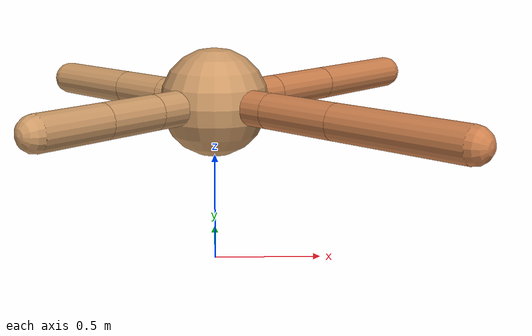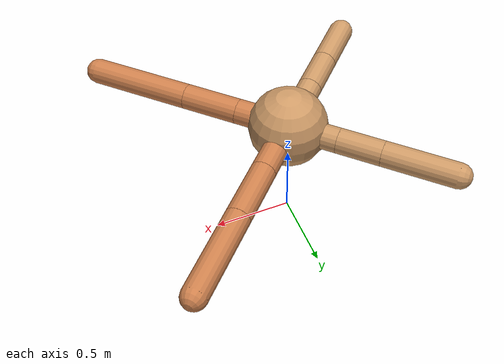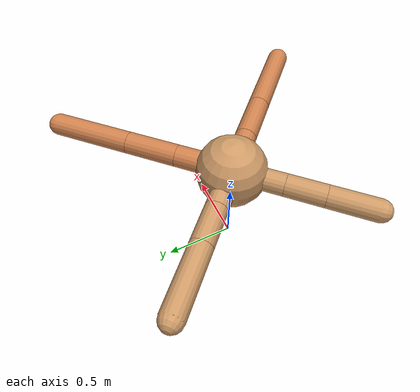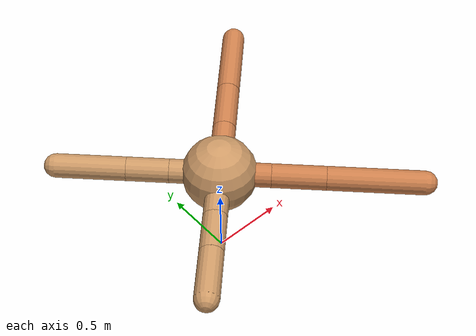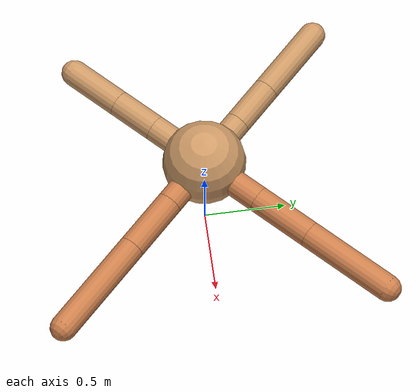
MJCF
<mujoco model="ant">
  <compiler angle="degree" coordinate="local" inertiafromgeom="true" />
  <option integrator="RK4" timestep="0.01" />
  <custom>
    <numeric data="0.0 0.0 0.55 1.0 0.0 0.0 0.0 0.0 1.0 0.0 -1.0 0.0 -1.0 0.0 1.0" name="init_qpos" />
  </custom>
  <default>
    <joint armature="1" damping="1" limited="true" />
    <geom conaffinity="0" condim="3" density="5.0" friction="1.5 0.1 0.1" margin="0.01" rgba="0.8 0.6 0.4 1" />
  </default>
  <worldbody>
    <body name="torso" pos="0 0 0.75">
      <geom name="torso_geom" pos="0 0 0" size="0.25" type="sphere" />

      <body name="front_left_leg" pos="0 0 0">
        <geom fromto="0.0 0.0 0.0 0.2846480738432832 0.2846480738432832 0.0" name="aux_1_geom" size="0.08" type="capsule" rgba=".8 .5 .3 1" />
        <body name="aux_1" pos="0.2846480738432832 0.2846480738432832 0.0">
          <joint axis="0 0 1" name="hip_1" pos="0.0 0.0 0.0" range="-40 40" type="hinge" />
          <geom fromto="0.0 0.0 0.0 0.2642315134475141 0.2642315134475141 0.0" name="left_leg_geom" size="0.08" type="capsule" rgba=".8 .5 .3 1" />
          <body pos="0.2642315134475141 0.2642315134475141 0.0" name="front_left_foot">
            <joint axis="-1 1 0" name="ankle_1" pos="0.0 0.0 0.0" range="30 100" type="hinge" />
            <geom fromto="0.0 0.0 0.0 0.4007781758064171 0.4007781758064171 0.0" name="left_ankle_geom" size="0.08" type="capsule" rgba=".8 .5 .3 1" />
          </body>
        </body>
      </body>
      <body name="front_right_leg" pos="0 0 0">
        <geom fromto="0.0 0.0 0.0 -0.231689181219001 0.231689181219001 0.0" name="aux_2_geom" size="0.08" type="capsule" />
        <body name="aux_2" pos="-0.231689181219001 0.231689181219001 0.0">
          <joint axis="0 0 1" name="hip_2" pos="0.0 0.0 0.0" range="-40 40" type="hinge" />
          <geom fromto="0.0 0.0 0.0 -0.19949633041703332 0.19949633041703332 0.0" name="right_leg_geom" size="0.08" type="capsule" />
          <body pos="-0.19949633041703332 0.19949633041703332 0.0" name="front_right_foot">
            <joint axis="1 1 0" name="ankle_2" pos="0.0 0.0 0.0" range="-100 -30" type="hinge" />
            <geom fromto="0.0 0.0 0.0 -0.330723218222318 0.330723218222318 0.0" name="right_ankle_geom" size="0.08" type="capsule" />
          </body>
        </body>
      </body>
      <body name="left_back_leg" pos="0 0 0">
        <geom fromto="0.0 0.0 0.0 -0.2620733787118219 -0.2620733787118219 0.0" name="aux_3_geom" size="0.08" type="capsule" />
        <body name="aux_3" pos="-0.2620733787118219 -0.2620733787118219 0.0">
          <joint axis="0 0 1" name="hip_3" pos="0.0 0.0 0.0" range="-40 40" type="hinge" />
          <geom fromto="0.0 0.0 0.0 -0.1948211546175395 -0.1948211546175395 0.0" name="back_leg_geom" size="0.08" type="capsule" />
          <body pos="-0.1948211546175395 -0.1948211546175395 0.0" name="left_back_foot">
            <joint axis="-1 1 0" name="ankle_3" pos="0.0 0.0 0.0" range="-100 -30" type="hinge" />
            <geom fromto="0.0 0.0 0.0 -0.24031440920496597 -0.24031440920496597 0.0" name="third_ankle_geom" size="0.08" type="capsule" />
          </body>
        </body>
      </body>
      <body name="right_back_leg" pos="0 0 0">
        <geom fromto="0.0 0.0 0.0 0.2388923390842512 -0.2388923390842512 0.0" name="aux_4_geom" size="0.08" type="capsule" rgba=".8 .5 .3 1" />
        <body name="aux_4" pos="0.2388923390842512 -0.2388923390842512 0.0">
          <joint axis="0 0 1" name="hip_4" pos="0.0 0.0 0.0" range="-40 40" type="hinge" />
          <geom fromto="0.0 0.0 0.0 0.25278358461535805 -0.25278358461535805 0.0" name="rightback_leg_geom" size="0.08" type="capsule" rgba=".8 .5 .3 1" />
          <body pos="0.25278358461535805 -0.25278358461535805 0.0" name="right_back_foot">
            <joint axis="1 1 0" name="ankle_4" pos="0.0 0.0 0.0" range="30 100" type="hinge" />
            <geom fromto="0.0 0.0 0.0 0.4513927357764816 -0.4513927357764816 0.0" name="fourth_ankle_geom" size="0.08" type="capsule" rgba=".8 .5 .3 1" />
          </body>
        </body>
      </body>
    </body>
  </worldbody>
  <actuator>
    <motor ctrllimited="true" ctrlrange="-1.0 1.0" joint="hip_4" gear="150" />
    <motor ctrllimited="true" ctrlrange="-1.0 1.0" joint="ankle_4" gear="150" />
    <motor ctrllimited="true" ctrlrange="-1.0 1.0" joint="hip_1" gear="150" />
    <motor ctrllimited="true" ctrlrange="-1.0 1.0" joint="ankle_1" gear="150" />
    <motor ctrllimited="true" ctrlrange="-1.0 1.0" joint="hip_2" gear="150" />
    <motor ctrllimited="true" ctrlrange="-1.0 1.0" joint="ankle_2" gear="150" />
    <motor ctrllimited="true" ctrlrange="-1.0 1.0" joint="hip_3" gear="150" />
    <motor ctrllimited="true" ctrlrange="-1.0 1.0" joint="ankle_3" gear="150" />
  </actuator>
</mujoco>
